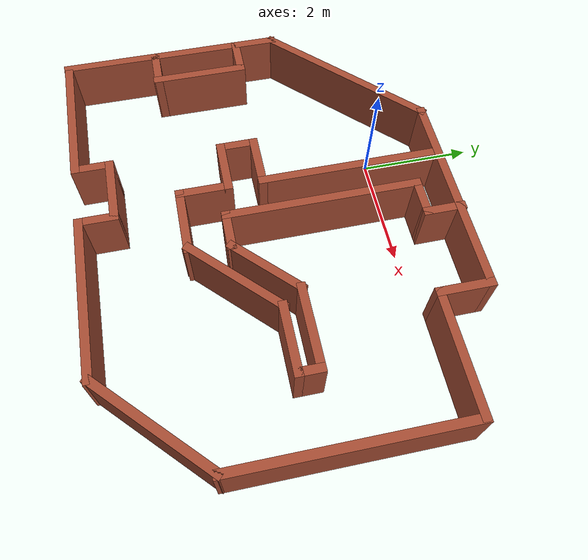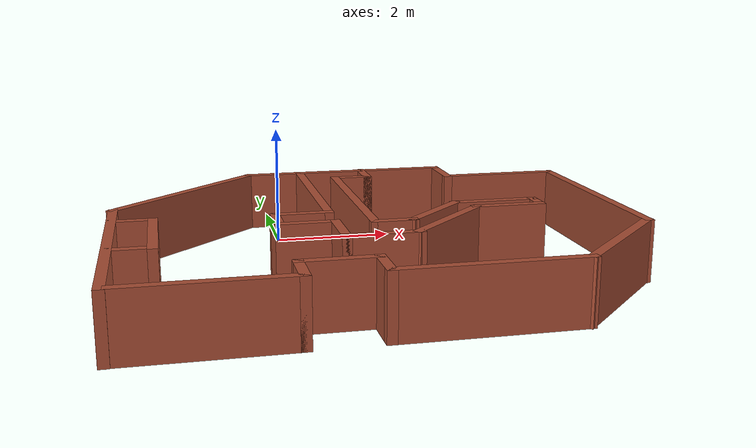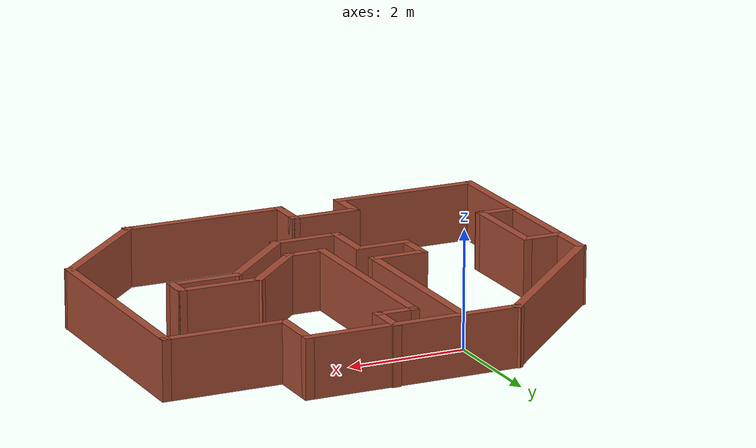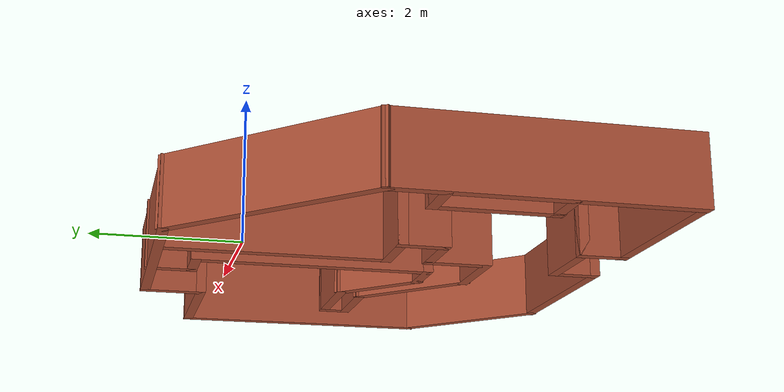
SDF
<sdf version="1.7">
  <model name="sim_house">
    <pose>1.21598 -2.10912 0 0 -0 0</pose>
    <link name="Wall_0">
      <collision name="Wall_0_Collision">
        <geometry>
          <box>
            <size>2.5 0.15 1.0</size>
          </box>
        </geometry>
        <pose>0 0 0.5 0 -0 0</pose>
      </collision>
      <visual name="Wall_0_Visual">
        <pose>0 0 0.5 0 -0 0</pose>
        <geometry>
          <box>
            <size>2.5 0.15 1.0</size>
          </box>
        </geometry>
        <material>
          <script><uri>file://media/materials/scripts/gazebo.material</uri><name>Gazebo/Bricks</name></script><pbr><metal><albedo_map>materials/textures/checker_blue.png</albedo_map></metal></pbr><ambient>1 1 1 1</ambient><diffuse>1 1 1 1</diffuse><specular>0.2 0.2 0.2 1</specular><emissive>0 0 0 1</emissive></material>
        <meta>
          <layer>0</layer>
        </meta>
      </visual>
      <pose>-2.70098 -3.18088 0 0 -0 0</pose>
    </link>
    <link name="Wall_1">
      <collision name="Wall_1_Collision">
        <geometry>
          <box>
            <size>0.75 0.15 1.0</size>
          </box>
        </geometry>
        <pose>0 0 0.5 0 -0 0</pose>
      </collision>
      <visual name="Wall_1_Visual">
        <pose>0 0 0.5 0 -0 0</pose>
        <geometry>
          <box>
            <size>0.75 0.15 1.0</size>
          </box>
        </geometry>
        <material>
          <script><uri>file://media/materials/scripts/gazebo.material</uri><name>Gazebo/Bricks</name></script><pbr><metal><albedo_map>materials/textures/checker_red.png</albedo_map></metal></pbr><ambient>1 1 1 1</ambient><diffuse>1 1 1 1</diffuse><specular>0.2 0.2 0.2 1</specular><emissive>0 0 0 1</emissive></material>
        <meta>
          <layer>0</layer>
        </meta>
      </visual>
      <pose>-1.52598 -2.88088 0 0 -0 1.5708</pose>
    </link>
    <link name="Wall_10">
      <collision name="Wall_10_Collision">
        <geometry>
          <box>
            <size>3.5 0.15 1.0</size>
          </box>
        </geometry>
        <pose>0 0 0.5 0 -0 0</pose>
      </collision>
      <visual name="Wall_10_Visual">
        <pose>0 0 0.5 0 -0 0</pose>
        <geometry>
          <box>
            <size>3.5 0.15 1.0</size>
          </box>
        </geometry>
        <material>
          <script><uri>file://media/materials/scripts/gazebo.material</uri><name>Gazebo/Bricks</name></script><pbr><metal><albedo_map>materials/textures/checker_green.png</albedo_map></metal></pbr><ambient>1 1 1 1</ambient><diffuse>1 1 1 1</diffuse><specular>0.2 0.2 0.2 1</specular><emissive>0 0 0 1</emissive></material>
        <meta>
          <layer>0</layer>
        </meta>
      </visual>
      <pose>-2.79863 1.99647 0 0 -0 -2.35619</pose>
    </link>
    <link name="Wall_11">
      <collision name="Wall_11_Collision">
        <geometry>
          <box>
            <size>4.153 0.15 1.0</size>
          </box>
        </geometry>
        <pose>0 0 0.5 0 -0 0</pose>
      </collision>
      <visual name="Wall_11_Visual">
        <pose>0 0 0.5 0 -0 0</pose>
        <geometry>
          <box>
            <size>4.153 0.15 1.0</size>
          </box>
        </geometry>
        <material>
          <script><uri>file://media/materials/scripts/gazebo.material</uri><name>Gazebo/Bricks</name></script><pbr><metal><albedo_map>materials/textures/noise.png</albedo_map></metal></pbr><ambient>1 1 1 1</ambient><diffuse>1 1 1 1</diffuse><specular>0.2 0.2 0.2 1</specular><emissive>0 0 0 1</emissive></material>
        <meta>
          <layer>0</layer>
        </meta>
      </visual>
      <pose>-3.98298 -1.18938 0 0 -0 -1.5708</pose>
    </link>
    <link name="Wall_13">
      <collision name="Wall_13_Collision">
        <geometry>
          <box>
            <size>0.75 0.15 1.0</size>
          </box>
        </geometry>
        <pose>0 0 0.5 0 -0 0</pose>
      </collision>
      <visual name="Wall_13_Visual">
        <pose>0 0 0.5 0 -0 0</pose>
        <geometry>
          <box>
            <size>0.75 0.15 1.0</size>
          </box>
        </geometry>
        <material>
          <script><uri>file://media/materials/scripts/gazebo.material</uri><name>Gazebo/Bricks</name></script><pbr><metal><albedo_map>materials/textures/bricks.png</albedo_map></metal></pbr><ambient>1 1 1 1</ambient><diffuse>1 1 1 1</diffuse><specular>0.2 0.2 0.2 1</specular><emissive>0 0 0 1</emissive></material>
        <meta>
          <layer>0</layer>
        </meta>
      </visual>
      <pose>-3.6653 0.087099 0 0 -0 0</pose>
    </link>
    <link name="Wall_14">
      <collision name="Wall_14_Collision">
        <geometry>
          <box>
            <size>1.76432 0.15 1.0</size>
          </box>
        </geometry>
        <pose>0 0 0.5 0 -0 0</pose>
      </collision>
      <visual name="Wall_14_Visual">
        <pose>0 0 0.5 0 -0 0</pose>
        <geometry>
          <box>
            <size>1.76432 0.15 1.0</size>
          </box>
        </geometry>
        <material>
          <script><uri>file://media/materials/scripts/gazebo.material</uri><name>Gazebo/Bricks</name></script><pbr><metal><albedo_map>materials/textures/checker_blue.png</albedo_map></metal></pbr><ambient>1 1 1 1</ambient><diffuse>1 1 1 1</diffuse><specular>0.2 0.2 0.2 1</specular><emissive>0 0 0 1</emissive></material>
        <meta>
          <layer>0</layer>
        </meta>
      </visual>
      <pose>-3.3653 -0.720058 0 0 -0 -1.5708</pose>
    </link>
    <link name="Wall_15">
      <collision name="Wall_15_Collision">
        <geometry>
          <box>
            <size>0.75 0.15 1.0</size>
          </box>
        </geometry>
        <pose>0 0 0.5 0 -0 0</pose>
      </collision>
      <visual name="Wall_15_Visual">
        <pose>0 0 0.5 0 -0 0</pose>
        <geometry>
          <box>
            <size>0.75 0.15 1.0</size>
          </box>
        </geometry>
        <material>
          <script><uri>file://media/materials/scripts/gazebo.material</uri><name>Gazebo/Bricks</name></script><pbr><metal><albedo_map>materials/textures/checker_red.png</albedo_map></metal></pbr><ambient>1 1 1 1</ambient><diffuse>1 1 1 1</diffuse><specular>0.2 0.2 0.2 1</specular><emissive>0 0 0 1</emissive></material>
        <meta>
          <layer>0</layer>
        </meta>
      </visual>
      <pose>-3.6653 -1.5071 0 0 -0 3.14159</pose>
    </link>
    <link name="Wall_17">
      <collision name="Wall_17_Collision">
        <geometry>
          <box>
            <size>3.25 0.15 1.0</size>
          </box>
        </geometry>
        <pose>0 0 0.5 0 -0 0</pose>
      </collision>
      <visual name="Wall_17_Visual">
        <pose>0 0 0.5 0 -0 0</pose>
        <geometry>
          <box>
            <size>3.25 0.15 1.0</size>
          </box>
        </geometry>
        <material>
          <script><uri>file://media/materials/scripts/gazebo.material</uri><name>Gazebo/Bricks</name></script><pbr><metal><albedo_map>materials/textures/checker_green.png</albedo_map></metal></pbr><ambient>1 1 1 1</ambient><diffuse>1 1 1 1</diffuse><specular>0.2 0.2 0.2 1</specular><emissive>0 0 0 1</emissive></material>
        <meta>
          <layer>0</layer>
        </meta>
      </visual>
      <pose>-0.665001 1.54843 0 0 -0 -1.5708</pose>
    </link>
    <link name="Wall_18">
      <collision name="Wall_18_Collision">
        <geometry>
          <box>
            <size>1 0.15 1.0</size>
          </box>
        </geometry>
        <pose>0 0 0.5 0 -0 0</pose>
      </collision>
      <visual name="Wall_18_Visual">
        <pose>0 0 0.5 0 -0 0</pose>
        <geometry>
          <box>
            <size>1 0.15 1.0</size>
          </box>
        </geometry>
        <material>
          <script><uri>file://media/materials/scripts/gazebo.material</uri><name>Gazebo/Bricks</name></script><pbr><metal><albedo_map>materials/textures/noise.png</albedo_map></metal></pbr><ambient>1 1 1 1</ambient><diffuse>1 1 1 1</diffuse><specular>0.2 0.2 0.2 1</specular><emissive>0 0 0 1</emissive></material>
        <meta>
          <layer>0</layer>
        </meta>
      </visual>
      <pose>-1.09 -0.001568 0 0 -0 3.14159</pose>
    </link>
    <link name="Wall_19">
      <collision name="Wall_19_Collision">
        <geometry>
          <box>
            <size>0.75 0.15 1.0</size>
          </box>
        </geometry>
        <pose>0 0 0.5 0 -0 0</pose>
      </collision>
      <visual name="Wall_19_Visual">
        <pose>0 0 0.5 0 -0 0</pose>
        <geometry>
          <box>
            <size>0.75 0.15 1.0</size>
          </box>
        </geometry>
        <material>
          <script><uri>file://media/materials/scripts/gazebo.material</uri><name>Gazebo/Bricks</name></script><pbr><metal><albedo_map>materials/textures/bricks.png</albedo_map></metal></pbr><ambient>1 1 1 1</ambient><diffuse>1 1 1 1</diffuse><specular>0.2 0.2 0.2 1</specular><emissive>0 0 0 1</emissive></material>
        <meta>
          <layer>0</layer>
        </meta>
      </visual>
      <pose>-1.515 -0.301568 0 0 -0 -1.5708</pose>
    </link>
    <link name="Wall_2">
      <collision name="Wall_2_Collision">
        <geometry>
          <box>
            <size>1.25 0.15 1.0</size>
          </box>
        </geometry>
        <pose>0 0 0.5 0 -0 0</pose>
      </collision>
      <visual name="Wall_2_Visual">
        <pose>0 0 0.5 0 -0 0</pose>
        <geometry>
          <box>
            <size>1.25 0.15 1.0</size>
          </box>
        </geometry>
        <material>
          <script><uri>file://media/materials/scripts/gazebo.material</uri><name>Gazebo/Bricks</name></script><pbr><metal><albedo_map>materials/textures/checker_blue.png</albedo_map></metal></pbr><ambient>1 1 1 1</ambient><diffuse>1 1 1 1</diffuse><specular>0.2 0.2 0.2 1</specular><emissive>0 0 0 1</emissive></material>
        <meta>
          <layer>0</layer>
        </meta>
      </visual>
      <pose>-0.975982 -2.58088 0 0 -0 0</pose>
    </link>
    <link name="Wall_20">
      <collision name="Wall_20_Collision">
        <geometry>
          <box>
            <size>1 0.15 1.0</size>
          </box>
        </geometry>
        <pose>0 0 0.5 0 -0 0</pose>
      </collision>
      <visual name="Wall_20_Visual">
        <pose>0 0 0.5 0 -0 0</pose>
        <geometry>
          <box>
            <size>1 0.15 1.0</size>
          </box>
        </geometry>
        <material>
          <script><uri>file://media/materials/scripts/gazebo.material</uri><name>Gazebo/Bricks</name></script><pbr><metal><albedo_map>materials/textures/checker_red.png</albedo_map></metal></pbr><ambient>1 1 1 1</ambient><diffuse>1 1 1 1</diffuse><specular>0.2 0.2 0.2 1</specular><emissive>0 0 0 1</emissive></material>
        <meta>
          <layer>0</layer>
        </meta>
      </visual>
      <pose>-1.09 -0.601568 0 0 -0 0</pose>
    </link>
    <link name="Wall_21">
      <collision name="Wall_21_Collision">
        <geometry>
          <box>
            <size>1 0.15 1.0</size>
          </box>
        </geometry>
        <pose>0 0 0.5 0 -0 0</pose>
      </collision>
      <visual name="Wall_21_Visual">
        <pose>0 0 0.5 0 -0 0</pose>
        <geometry>
          <box>
            <size>1 0.15 1.0</size>
          </box>
        </geometry>
        <material>
          <script><uri>file://media/materials/scripts/gazebo.material</uri><name>Gazebo/Bricks</name></script><pbr><metal><albedo_map>materials/textures/checker_green.png</albedo_map></metal></pbr><ambient>1 1 1 1</ambient><diffuse>1 1 1 1</diffuse><specular>0.2 0.2 0.2 1</specular><emissive>0 0 0 1</emissive></material>
        <meta>
          <layer>0</layer>
        </meta>
      </visual>
      <pose>-0.665001 -1.02657 0 0 -0 -1.5708</pose>
    </link>
    <link name="Wall_22">
      <collision name="Wall_22_Collision">
        <geometry>
          <box>
            <size>1.25 0.15 1.0</size>
          </box>
        </geometry>
        <pose>0 0 0.5 0 -0 0</pose>
      </collision>
      <visual name="Wall_22_Visual">
        <pose>0 0 0.5 0 -0 0</pose>
        <geometry>
          <box>
            <size>1.25 0.15 1.0</size>
          </box>
        </geometry>
        <material>
          <script><uri>file://media/materials/scripts/gazebo.material</uri><name>Gazebo/Bricks</name></script><pbr><metal><albedo_map>materials/textures/noise.png</albedo_map></metal></pbr><ambient>1 1 1 1</ambient><diffuse>1 1 1 1</diffuse><specular>0.2 0.2 0.2 1</specular><emissive>0 0 0 1</emissive></material>
        <meta>
          <layer>0</layer>
        </meta>
      </visual>
      <pose>-0.115001 -1.45157 0 0 -0 0</pose>
    </link>
    <link name="Wall_24">
      <collision name="Wall_24_Collision">
        <geometry>
          <box>
            <size>0.75 0.15 1.0</size>
          </box>
        </geometry>
        <pose>0 0 0.5 0 -0 0</pose>
      </collision>
      <visual name="Wall_24_Visual">
        <pose>0 0 0.5 0 -0 0</pose>
        <geometry>
          <box>
            <size>0.75 0.15 1.0</size>
          </box>
        </geometry>
        <material>
          <script><uri>file://media/materials/scripts/gazebo.material</uri><name>Gazebo/Bricks</name></script><pbr><metal><albedo_map>materials/textures/bricks.png</albedo_map></metal></pbr><ambient>1 1 1 1</ambient><diffuse>1 1 1 1</diffuse><specular>0.2 0.2 0.2 1</specular><emissive>0 0 0 1</emissive></material>
        <meta>
          <layer>0</layer>
        </meta>
      </visual>
      <pose>0.215018 -0.740877 0 0 -0 3.14159</pose>
    </link>
    <link name="Wall_25">
      <collision name="Wall_25_Collision">
        <geometry>
          <box>
            <size>3.5 0.15 1.0</size>
          </box>
        </geometry>
        <pose>0 0 0.5 0 -0 0</pose>
      </collision>
      <visual name="Wall_25_Visual">
        <pose>0 0 0.5 0 -0 0</pose>
        <geometry>
          <box>
            <size>3.5 0.15 1.0</size>
          </box>
        </geometry>
        <material>
          <script><uri>file://media/materials/scripts/gazebo.material</uri><name>Gazebo/Bricks</name></script><pbr><metal><albedo_map>materials/textures/checker_blue.png</albedo_map></metal></pbr><ambient>1 1 1 1</ambient><diffuse>1 1 1 1</diffuse><specular>0.2 0.2 0.2 1</specular><emissive>0 0 0 1</emissive></material>
        <meta>
          <layer>0</layer>
        </meta>
      </visual>
      <pose>-0.084982 0.934123 0 0 -0 1.5708</pose>
    </link>
    <link name="Wall_29">
      <collision name="Wall_29_Collision">
        <geometry>
          <box>
            <size>1.5 0.15 1.0</size>
          </box>
        </geometry>
        <pose>0 0 0.5 0 -0 0</pose>
      </collision>
      <visual name="Wall_29_Visual">
        <pose>0 0 0.5 0 -0 0</pose>
        <geometry>
          <box>
            <size>1.5 0.15 1.0</size>
          </box>
        </geometry>
        <material>
          <script><uri>file://media/materials/scripts/gazebo.material</uri><name>Gazebo/Bricks</name></script><pbr><metal><albedo_map>materials/textures/checker_red.png</albedo_map></metal></pbr><ambient>1 1 1 1</ambient><diffuse>1 1 1 1</diffuse><specular>0.2 0.2 0.2 1</specular><emissive>0 0 0 1</emissive></material>
        <meta>
          <layer>0</layer>
        </meta>
      </visual>
      <pose>0.992315 -0.26358 0 0 -0 0.785398</pose>
    </link>
    <link name="Wall_3">
      <collision name="Wall_3_Collision">
        <geometry>
          <box>
            <size>0.75 0.15 1.0</size>
          </box>
        </geometry>
        <pose>0 0 0.5 0 -0 0</pose>
      </collision>
      <visual name="Wall_3_Visual">
        <pose>0 0 0.5 0 -0 0</pose>
        <geometry>
          <box>
            <size>0.75 0.15 1.0</size>
          </box>
        </geometry>
        <material>
          <script><uri>file://media/materials/scripts/gazebo.material</uri><name>Gazebo/Bricks</name></script><pbr><metal><albedo_map>materials/textures/checker_green.png</albedo_map></metal></pbr><ambient>1 1 1 1</ambient><diffuse>1 1 1 1</diffuse><specular>0.2 0.2 0.2 1</specular><emissive>0 0 0 1</emissive></material>
        <meta>
          <layer>0</layer>
        </meta>
      </visual>
      <pose>-0.425982 -2.88088 0 0 -0 -1.5708</pose>
    </link>
    <link name="Wall_30">
      <collision name="Wall_30_Collision">
        <geometry>
          <box>
            <size>1.5 0.15 1.0</size>
          </box>
        </geometry>
        <pose>0 0 0.5 0 -0 0</pose>
      </collision>
      <visual name="Wall_30_Visual">
        <pose>0 0 0.5 0 -0 0</pose>
        <geometry>
          <box>
            <size>1.5 0.15 1.0</size>
          </box>
        </geometry>
        <material>
          <script><uri>file://media/materials/scripts/gazebo.material</uri><name>Gazebo/Bricks</name></script><pbr><metal><albedo_map>materials/textures/noise.png</albedo_map></metal></pbr><ambient>1 1 1 1</ambient><diffuse>1 1 1 1</diffuse><specular>0.2 0.2 0.2 1</specular><emissive>0 0 0 1</emissive></material>
        <meta>
          <layer>0</layer>
        </meta>
      </visual>
      <pose>2.14461 0.213717 0 0 -0 0</pose>
    </link>
    <link name="Wall_31">
      <collision name="Wall_31_Collision">
        <geometry>
          <box>
            <size>0.5 0.15 1.0</size>
          </box>
        </geometry>
        <pose>0 0 0.5 0 -0 0</pose>
      </collision>
      <visual name="Wall_31_Visual">
        <pose>0 0 0.5 0 -0 0</pose>
        <geometry>
          <box>
            <size>0.5 0.15 1.0</size>
          </box>
        </geometry>
        <material>
          <script><uri>file://media/materials/scripts/gazebo.material</uri><name>Gazebo/Bricks</name></script><pbr><metal><albedo_map>materials/textures/bricks.png</albedo_map></metal></pbr><ambient>1 1 1 1</ambient><diffuse>1 1 1 1</diffuse><specular>0.2 0.2 0.2 1</specular><emissive>0 0 0 1</emissive></material>
        <meta>
          <layer>0</layer>
        </meta>
      </visual>
      <pose>2.81961 0.038717 0 0 -0 -1.5708</pose>
    </link>
    <link name="Wall_32">
      <collision name="Wall_32_Collision">
        <geometry>
          <box>
            <size>1.25 0.15 1.0</size>
          </box>
        </geometry>
        <pose>0 0 0.5 0 -0 0</pose>
      </collision>
      <visual name="Wall_32_Visual">
        <pose>0 0 0.5 0 -0 0</pose>
        <geometry>
          <box>
            <size>1.25 0.15 1.0</size>
          </box>
        </geometry>
        <material>
          <script><uri>file://media/materials/scripts/gazebo.material</uri><name>Gazebo/Bricks</name></script><pbr><metal><albedo_map>materials/textures/checker_blue.png</albedo_map></metal></pbr><ambient>1 1 1 1</ambient><diffuse>1 1 1 1</diffuse><specular>0.2 0.2 0.2 1</specular><emissive>0 0 0 1</emissive></material>
        <meta>
          <layer>0</layer>
        </meta>
      </visual>
      <pose>2.26961 -0.136283 0 0 -0 3.14159</pose>
    </link>
    <link name="Wall_33">
      <collision name="Wall_33_Collision">
        <geometry>
          <box>
            <size>2 0.15 1.0</size>
          </box>
        </geometry>
        <pose>0 0 0.5 0 -0 0</pose>
      </collision>
      <visual name="Wall_33_Visual">
        <pose>0 0 0.5 0 -0 0</pose>
        <geometry>
          <box>
            <size>2 0.15 1.0</size>
          </box>
        </geometry>
        <material>
          <script><uri>file://media/materials/scripts/gazebo.material</uri><name>Gazebo/Bricks</name></script><pbr><metal><albedo_map>materials/textures/checker_red.png</albedo_map></metal></pbr><ambient>1 1 1 1</ambient><diffuse>1 1 1 1</diffuse><specular>0.2 0.2 0.2 1</specular><emissive>0 0 0 1</emissive></material>
        <meta>
          <layer>0</layer>
        </meta>
      </visual>
      <pose>1.06554 -0.790357 0 0 -0 -2.35619</pose>
    </link>
    <link name="Wall_35">
      <collision name="Wall_35_Collision">
        <geometry>
          <box>
            <size>0.75 0.15 1.0</size>
          </box>
        </geometry>
        <pose>0 0 0.5 0 -0 0</pose>
      </collision>
      <visual name="Wall_35_Visual">
        <pose>0 0 0.5 0 -0 0</pose>
        <geometry>
          <box>
            <size>0.75 0.15 1.0</size>
          </box>
        </geometry>
        <material>
          <script><uri>file://media/materials/scripts/gazebo.material</uri><name>Gazebo/Bricks</name></script><pbr><metal><albedo_map>materials/textures/checker_green.png</albedo_map></metal></pbr><ambient>1 1 1 1</ambient><diffuse>1 1 1 1</diffuse><specular>0.2 0.2 0.2 1</specular><emissive>0 0 0 1</emissive></material>
        <meta>
          <layer>0</layer>
        </meta>
      </visual>
      <pose>0.215018 2.60912 0 0 -0 0</pose>
    </link>
    <link name="Wall_36">
      <collision name="Wall_36_Collision">
        <geometry>
          <box>
            <size>0.75 0.15 1.0</size>
          </box>
        </geometry>
        <pose>0 0 0.5 0 -0 0</pose>
      </collision>
      <visual name="Wall_36_Visual">
        <pose>0 0 0.5 0 -0 0</pose>
        <geometry>
          <box>
            <size>0.75 0.15 1.0</size>
          </box>
        </geometry>
        <material>
          <script><uri>file://media/materials/scripts/gazebo.material</uri><name>Gazebo/Bricks</name></script><pbr><metal><albedo_map>materials/textures/noise.png</albedo_map></metal></pbr><ambient>1 1 1 1</ambient><diffuse>1 1 1 1</diffuse><specular>0.2 0.2 0.2 1</specular><emissive>0 0 0 1</emissive></material>
        <meta>
          <layer>0</layer>
        </meta>
      </visual>
      <pose>0.515018 2.90912 0 0 -0 1.5708</pose>
    </link>
    <link name="Wall_4">
      <collision name="Wall_4_Collision">
        <geometry>
          <box>
            <size>2.89732 0.15 1.0</size>
          </box>
        </geometry>
        <pose>0 0 0.5 0 -0 0</pose>
      </collision>
      <visual name="Wall_4_Visual">
        <pose>0 0 0.5 0 -0 0</pose>
        <geometry>
          <box>
            <size>2.89732 0.15 1.0</size>
          </box>
        </geometry>
        <material>
          <script><uri>file://media/materials/scripts/gazebo.material</uri><name>Gazebo/Bricks</name></script><pbr><metal><albedo_map>materials/textures/bricks.png</albedo_map></metal></pbr><ambient>1 1 1 1</ambient><diffuse>1 1 1 1</diffuse><specular>0.2 0.2 0.2 1</specular><emissive>0 0 0 1</emissive></material>
        <meta>
          <layer>0</layer>
        </meta>
      </visual>
      <pose>0.947676 -3.18088 0 0 -0 0</pose>
    </link>
    <link name="Wall_5">
      <collision name="Wall_5_Collision">
        <geometry>
          <box>
            <size>2.5 0.15 1.0</size>
          </box>
        </geometry>
        <pose>0 0 0.5 0 -0 0</pose>
      </collision>
      <visual name="Wall_5_Visual">
        <pose>0 0 0.5 0 -0 0</pose>
        <geometry>
          <box>
            <size>2.5 0.15 1.0</size>
          </box>
        </geometry>
        <material>
          <script><uri>file://media/materials/scripts/gazebo.material</uri><name>Gazebo/Bricks</name></script><pbr><metal><albedo_map>materials/textures/checker_blue.png</albedo_map></metal></pbr><ambient>1 1 1 1</ambient><diffuse>1 1 1 1</diffuse><specular>0.2 0.2 0.2 1</specular><emissive>0 0 0 1</emissive></material>
        <meta>
          <layer>0</layer>
        </meta>
      </visual>
      <pose>3.15218 -2.35003 0 0 -0 0.785398</pose>
    </link>
    <link name="Wall_6">
      <collision name="Wall_6_Collision">
        <geometry>
          <box>
            <size>4 0.15 1.0</size>
          </box>
        </geometry>
        <pose>0 0 0.5 0 -0 0</pose>
      </collision>
      <visual name="Wall_6_Visual">
        <pose>0 0 0.5 0 -0 0</pose>
        <geometry>
          <box>
            <size>4 0.15 1.0</size>
          </box>
        </geometry>
        <material>
          <script><uri>file://media/materials/scripts/gazebo.material</uri><name>Gazebo/Bricks</name></script><pbr><metal><albedo_map>materials/textures/checker_red.png</albedo_map></metal></pbr><ambient>1 1 1 1</ambient><diffuse>1 1 1 1</diffuse><specular>0.2 0.2 0.2 1</specular><emissive>0 0 0 1</emissive></material>
        <meta>
          <layer>0</layer>
        </meta>
      </visual>
      <pose>3.99824 0.405824 0 0 -0 1.5708</pose>
    </link>
    <link name="Wall_7">
      <collision name="Wall_7_Collision">
        <geometry>
          <box>
            <size>2.14732 0.15 1.0</size>
          </box>
        </geometry>
        <pose>0 0 0.5 0 -0 0</pose>
      </collision>
      <visual name="Wall_7_Visual">
        <pose>0 0 0.5 0 -0 0</pose>
        <geometry>
          <box>
            <size>2.14732 0.15 1.0</size>
          </box>
        </geometry>
        <material>
          <script><uri>file://media/materials/scripts/gazebo.material</uri><name>Gazebo/Bricks</name></script><pbr><metal><albedo_map>materials/textures/checker_green.png</albedo_map></metal></pbr><ambient>1 1 1 1</ambient><diffuse>1 1 1 1</diffuse><specular>0.2 0.2 0.2 1</specular><emissive>0 0 0 1</emissive></material>
        <meta>
          <layer>0</layer>
        </meta>
      </visual>
      <pose>2.98438 2.33082 0 0 -0 3.14159</pose>
    </link>
    <link name="Wall_8">
      <collision name="Wall_8_Collision">
        <geometry>
          <box>
            <size>1 0.15 1.0</size>
          </box>
        </geometry>
        <pose>0 0 0.5 0 -0 0</pose>
      </collision>
      <visual name="Wall_8_Visual">
        <pose>0 0 0.5 0 -0 0</pose>
        <geometry>
          <box>
            <size>1 0.15 1.0</size>
          </box>
        </geometry>
        <material>
          <script><uri>file://media/materials/scripts/gazebo.material</uri><name>Gazebo/Bricks</name></script><pbr><metal><albedo_map>materials/textures/noise.png</albedo_map></metal></pbr><ambient>1 1 1 1</ambient><diffuse>1 1 1 1</diffuse><specular>0.2 0.2 0.2 1</specular><emissive>0 0 0 1</emissive></material>
        <meta>
          <layer>0</layer>
        </meta>
      </visual>
      <pose>1.98572 2.75582 0 0 -0 1.5708</pose>
    </link>
    <link name="Wall_9">
      <collision name="Wall_9_Collision">
        <geometry>
          <box>
            <size>3.75 0.15 1.0</size>
          </box>
        </geometry>
        <pose>0 0 0.5 0 -0 0</pose>
      </collision>
      <visual name="Wall_9_Visual">
        <pose>0 0 0.5 0 -0 0</pose>
        <geometry>
          <box>
            <size>3.75 0.15 1.0</size>
          </box>
        </geometry>
        <material>
          <script><uri>file://media/materials/scripts/gazebo.material</uri><name>Gazebo/Bricks</name></script><pbr><metal><albedo_map>materials/textures/bricks.png</albedo_map></metal></pbr><ambient>1 1 1 1</ambient><diffuse>1 1 1 1</diffuse><specular>0.2 0.2 0.2 1</specular><emissive>0 0 0 1</emissive></material>
        <meta>
          <layer>0</layer>
        </meta>
      </visual>
      <pose>0.185719 3.18082 0 0 -0 3.14159</pose>
    </link>
    <static>1</static>
  </model>
</sdf>
